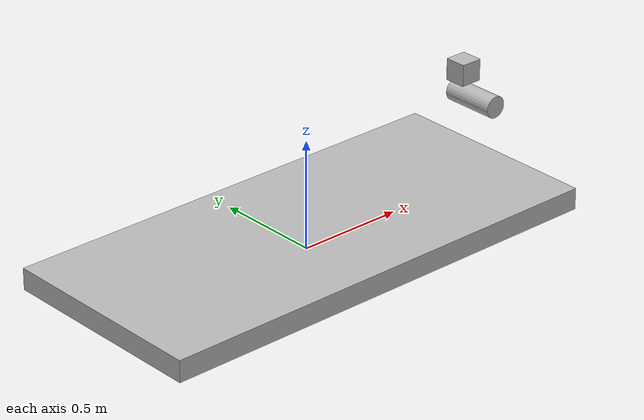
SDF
<?xml version="1.0"?>
<sdf version="1.5">
    <model name="revolute2_demo">
        <link name="heavy_base">
            <!-- position the base such that the bottom touches the floor -->
            <pose>0 0 0.05 0 0 0</pose>
            <inertial>
                <mass>100</mass>                <!-- kg -->
                <inertia>
                    <!-- (mass / 12) * (y*y + z*z) -->
                    <ixx>8.4167</ixx>
                    <ixy>0</ixy>
                    <ixz>0</ixz>
                    <!-- (mass / 12) * (x*x + z*z) -->
                    <iyy>40.417</iyy>
                    <iyz>0</iyz>
                    <!-- (mass / 12) * (y*y + x*x) -->
                    <izz>48.667</izz>
                </inertia>
            </inertial>
            <!-- Same geometry as visual -->
            <collision name="heavy_base_collision">
                <geometry>
                    <box>
                        <size>2.2 1 0.1</size>
                    </box>
                </geometry>
            </collision>
            <!-- Same geometry as collision -->
            <visual name="heavy_base_visual">
                <geometry>
                    <box>
                        <size>2.2 1 0.1</size>
                    </box>
                </geometry>
                <material>
                    <script>
                        <uri>model://demo_joint_types/materials/scripts</uri>
                        <uri>model://demo_joint_types/materials/textures</uri>
                        <name>demo_joint_types/legend</name>
                    </script>
                </material>
            </visual>
        </link>

        <link name="universal_base">
            <!-- make the base float in the sky -->
            <pose >0.9 0 0.55 0 0 0</pose>
            <inertial>
                <inertia>
                    <!-- (mass / 12) * (y*y + z*z) -->
                    <ixx>0.0016667</ixx>
                    <ixy>0</ixy>
                    <ixz>0</ixz>
                    <!-- (mass / 12) * (x*x + z*z) -->
                    <iyy>0.0016667</iyy>
                    <iyz>0</iyz>
                    <!-- (mass / 12) * (y*y + x*x) -->
                    <izz>0.0016667</izz>
                </inertia>
            </inertial>
            <!-- Same geometry as visual -->
            <collision name="universal_base_collision">
                <geometry>
                    <box>
                        <size>0.1 0.1 0.1</size>
                    </box>
                </geometry>
            </collision>
            <!-- Same geometry as collision -->
            <visual name="universal_base_visual">
                <geometry>
                    <box>
                        <size>0.1 0.1 0.1</size>
                    </box>
                </geometry>
                <material>
                    <script>
                        <uri>model://demo_joint_types/materials/scripts</uri>
                        <uri>model://demo_joint_types/materials/textures</uri>
                        <name>demo_joint_types/parent</name>
                    </script>
                </material>
            </visual>
        </link>

        <joint name="universal_base_to_heavy_base" type="fixed">
            <parent>heavy_base</parent>
            <child>universal_base</child>
        </joint>

        <link name="universal_shaft">
            <!-- Put the shaft just under the base -->
            <pose >0.9 -0.075 0.44 1.5708 0 0</pose>
            <inertial>
                <inertia>
                    <!-- (mass / 12) * (3 * radius * radius + length * length) -->
                    <ixx>0.0058333</ixx>
                    <ixy>0</ixy>
                    <ixz>0</ixz>
                    <!-- (mass / 12) * (3 * radius * radius + length * length) -->
                    <iyy>0.0058333</iyy>
                    <iyz>0</iyz>
                    <!-- mass * radius * radius * 0.5 -->
                    <izz>0.00125</izz>
                </inertia>
                <!-- offset interia as a trick to get movement from gravity -->
                <pose >-0.02 0.02 0 0 0 0</pose>
            </inertial>
            <!-- Same geometry as visual -->
            <collision name="universal_shaft_collision">
                <geometry>
                    <cylinder>
                        <radius>0.05</radius>
                        <length>0.25</length>
                    </cylinder>
                </geometry>
            </collision>
            <!-- Same geometry as collision -->
            <visual name="universal_shaft_visual">
                <geometry>
                    <cylinder>
                        <radius>0.05</radius>
                        <length>0.25</length>
                    </cylinder>
                </geometry>
                <material>
                    <script>
                        <uri>model://demo_joint_types/materials/scripts</uri>
                        <uri>model://demo_joint_types/materials/textures</uri>
                        <name>demo_joint_types/child</name>
                    </script>
                </material>
            </visual>
        </link>

        <joint name="universal_demo" type="universal">
            <parent>universal_base</parent>
            <child>universal_shaft</child>
            <pose>0 0 -0.075 0 0 0</pose>
        </joint>
    </model>
</sdf>
